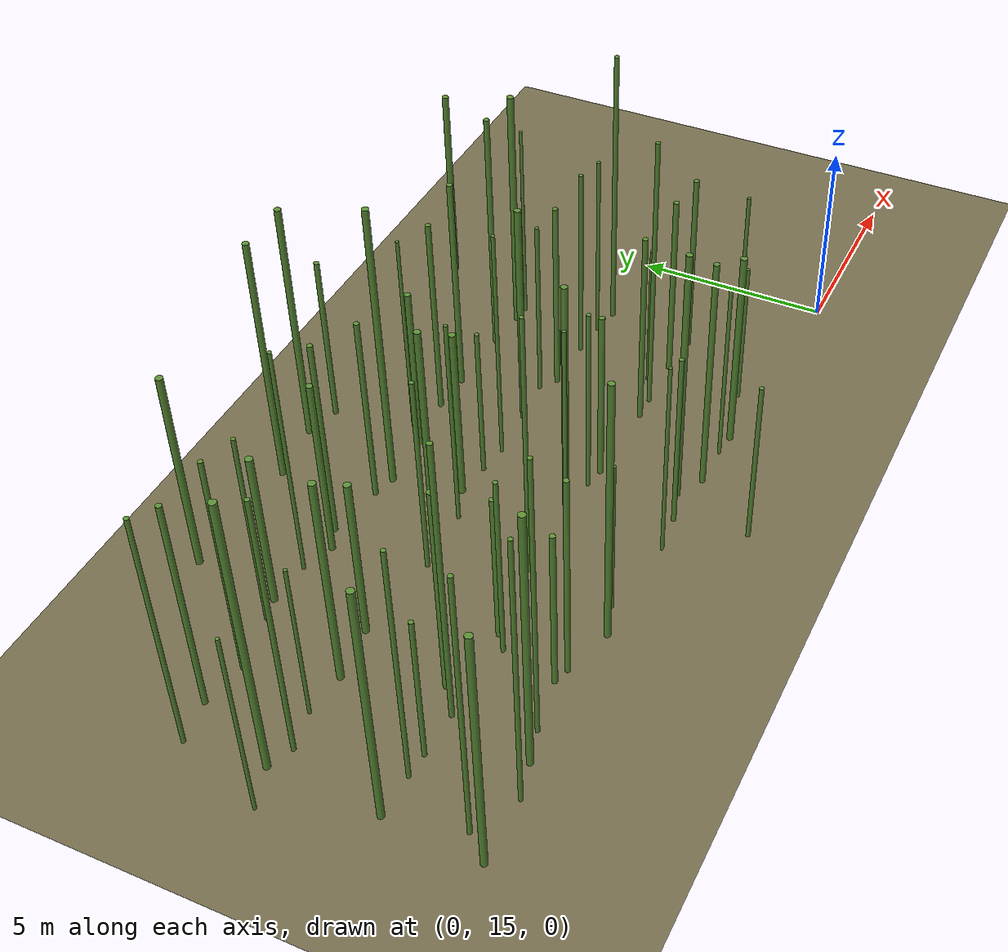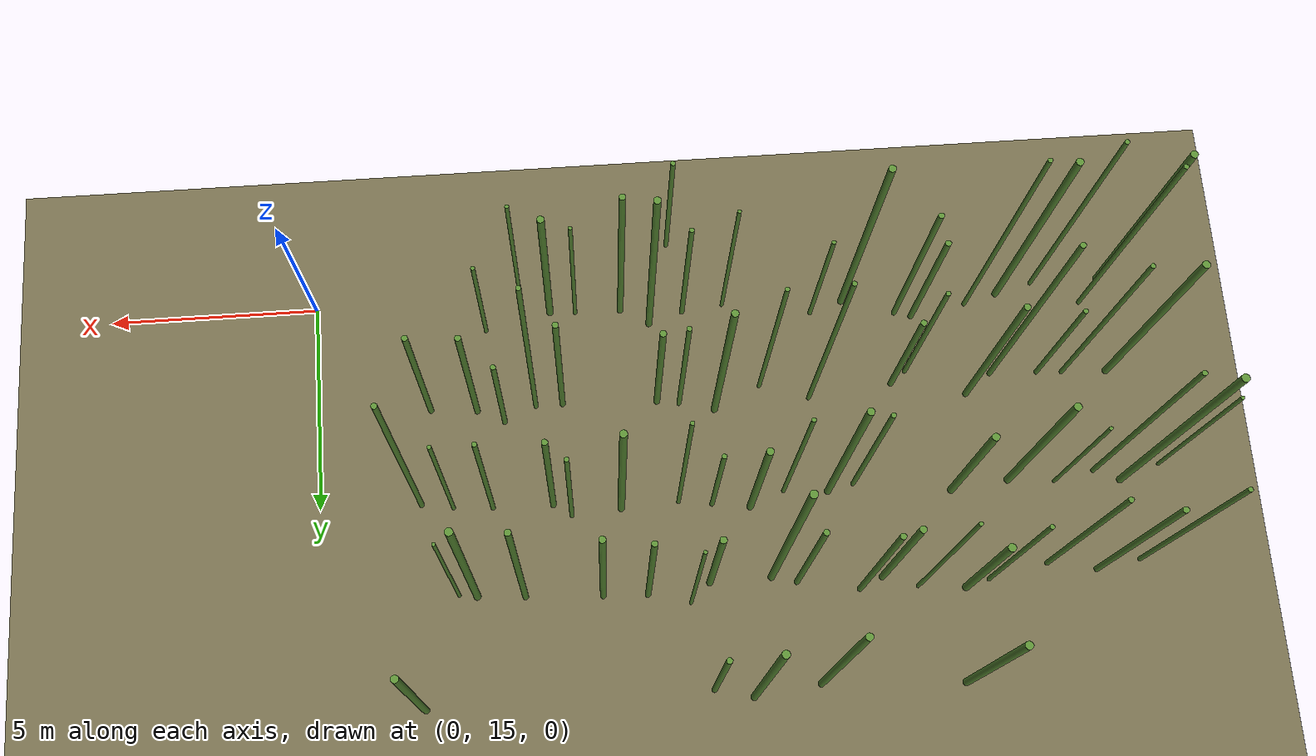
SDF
<sdf version="1.9">
 <world name="bamboo_field">
  <model name="ground_plane">
   <static>true</static>
   <link name="link">
    <collision name="collision">
     <geometry><plane><normal>0 0 1</normal><size>80.0 80.0</size></plane></geometry>
    </collision>
    <visual name="visual">
     <geometry><plane><normal>0 0 1</normal><size>80.0 80.0</size></plane></geometry>
     <material><diffuse>0.45 0.42 0.30 1</diffuse></material>
    </visual>
   </link>
  </model>
  <model name="bamboo_1370">
   <static>true</static>
   <pose>-8.637411182873626 13.799189805065652 2.2882804846056155 0 0 0</pose>
   <link name="link">
    <collision name="collision">
     <geometry>
      <cylinder><radius>0.054734864406432354</radius><length>4.576560969211231</length></cylinder>
     </geometry>
    </collision>
    <visual name="visual">
     <geometry>
      <cylinder><radius>0.054734864406432354</radius><length>4.576560969211231</length></cylinder>
     </geometry>
     <material><diffuse>0.35 0.55 0.20 1</diffuse><specular>0.1 0.1 0.1 1</specular></material>
    </visual>
   </link>
  </model>
  <model name="bamboo_1422">
   <static>true</static>
   <pose>-19.141682316494336 15.375070960467488 3.4076699135398143 0 0 0</pose>
   <link name="link">
    <collision name="collision">
     <geometry>
      <cylinder><radius>0.08102089876117535</radius><length>6.815339827079629</length></cylinder>
     </geometry>
    </collision>
    <visual name="visual">
     <geometry>
      <cylinder><radius>0.08102089876117535</radius><length>6.815339827079629</length></cylinder>
     </geometry>
     <material><diffuse>0.35 0.55 0.20 1</diffuse><specular>0.1 0.1 0.1 1</specular></material>
    </visual>
   </link>
  </model>
  <model name="bamboo_1423">
   <static>true</static>
   <pose>-18.62548258652282 15.95668628831851 3.7592143216532743 0 0 0</pose>
   <link name="link">
    <collision name="collision">
     <geometry>
      <cylinder><radius>0.054180221135768716</radius><length>7.518428643306549</length></cylinder>
     </geometry>
    </collision>
    <visual name="visual">
     <geometry>
      <cylinder><radius>0.054180221135768716</radius><length>7.518428643306549</length></cylinder>
     </geometry>
     <material><diffuse>0.35 0.55 0.20 1</diffuse><specular>0.1 0.1 0.1 1</specular></material>
    </visual>
   </link>
  </model>
  <model name="bamboo_1424">
   <static>true</static>
   <pose>-17.50238699015399 15.380618411402144 3.800374506548927 0 0 0</pose>
   <link name="link">
    <collision name="collision">
     <geometry>
      <cylinder><radius>0.052077721954940835</radius><length>7.600749013097854</length></cylinder>
     </geometry>
    </collision>
    <visual name="visual">
     <geometry>
      <cylinder><radius>0.052077721954940835</radius><length>7.600749013097854</length></cylinder>
     </geometry>
     <material><diffuse>0.35 0.55 0.20 1</diffuse><specular>0.1 0.1 0.1 1</specular></material>
    </visual>
   </link>
  </model>
  <model name="bamboo_1425">
   <static>true</static>
   <pose>-16.611264540848623 15.604310322659313 3.6400687805003735 0 0 0</pose>
   <link name="link">
    <collision name="collision">
     <geometry>
      <cylinder><radius>0.08083535057267667</radius><length>7.280137561000747</length></cylinder>
     </geometry>
    </collision>
    <visual name="visual">
     <geometry>
      <cylinder><radius>0.08083535057267667</radius><length>7.280137561000747</length></cylinder>
     </geometry>
     <material><diffuse>0.35 0.55 0.20 1</diffuse><specular>0.1 0.1 0.1 1</specular></material>
    </visual>
   </link>
  </model>
  <model name="bamboo_1426">
   <static>true</static>
   <pose>-15.812699993264918 15.82085141666468 3.9469806461239214 0 0 0</pose>
   <link name="link">
    <collision name="collision">
     <geometry>
      <cylinder><radius>0.05209155565341546</radius><length>7.893961292247843</length></cylinder>
     </geometry>
    </collision>
    <visual name="visual">
     <geometry>
      <cylinder><radius>0.05209155565341546</radius><length>7.893961292247843</length></cylinder>
     </geometry>
     <material><diffuse>0.35 0.55 0.20 1</diffuse><specular>0.1 0.1 0.1 1</specular></material>
    </visual>
   </link>
  </model>
  <model name="bamboo_1427">
   <static>true</static>
   <pose>-14.470750871890035 16.05389631021523 2.257740928819652 0 0 0</pose>
   <link name="link">
    <collision name="collision">
     <geometry>
      <cylinder><radius>0.06889268078994096</radius><length>4.515481857639304</length></cylinder>
     </geometry>
    </collision>
    <visual name="visual">
     <geometry>
      <cylinder><radius>0.06889268078994096</radius><length>4.515481857639304</length></cylinder>
     </geometry>
     <material><diffuse>0.35 0.55 0.20 1</diffuse><specular>0.1 0.1 0.1 1</specular></material>
    </visual>
   </link>
  </model>
  <model name="bamboo_1428">
   <static>true</static>
   <pose>-14.076950860724768 15.930567747976061 2.874803174003504 0 0 0</pose>
   <link name="link">
    <collision name="collision">
     <geometry>
      <cylinder><radius>0.06586385390104489</radius><length>5.749606348007008</length></cylinder>
     </geometry>
    </collision>
    <visual name="visual">
     <geometry>
      <cylinder><radius>0.06586385390104489</radius><length>5.749606348007008</length></cylinder>
     </geometry>
     <material><diffuse>0.35 0.55 0.20 1</diffuse><specular>0.1 0.1 0.1 1</specular></material>
    </visual>
   </link>
  </model>
  <model name="bamboo_1429">
   <static>true</static>
   <pose>-12.805829721705058 15.551908451923197 3.6860614532555918 0 0 0</pose>
   <link name="link">
    <collision name="collision">
     <geometry>
      <cylinder><radius>0.07921406469941591</radius><length>7.3721229065111835</length></cylinder>
     </geometry>
    </collision>
    <visual name="visual">
     <geometry>
      <cylinder><radius>0.07921406469941591</radius><length>7.3721229065111835</length></cylinder>
     </geometry>
     <material><diffuse>0.35 0.55 0.20 1</diffuse><specular>0.1 0.1 0.1 1</specular></material>
    </visual>
   </link>
  </model>
  <model name="bamboo_1430">
   <static>true</static>
   <pose>-12.017595658243396 15.809973254308215 2.18653081395686 0 0 0</pose>
   <link name="link">
    <collision name="collision">
     <geometry>
      <cylinder><radius>0.050188128833940034</radius><length>4.37306162791372</length></cylinder>
     </geometry>
    </collision>
    <visual name="visual">
     <geometry>
      <cylinder><radius>0.050188128833940034</radius><length>4.37306162791372</length></cylinder>
     </geometry>
     <material><diffuse>0.35 0.55 0.20 1</diffuse><specular>0.1 0.1 0.1 1</specular></material>
    </visual>
   </link>
  </model>
  <model name="bamboo_1431">
   <static>true</static>
   <pose>-9.883807006385647 15.461130976553129 2.764809698243288 0 0 0</pose>
   <link name="link">
    <collision name="collision">
     <geometry>
      <cylinder><radius>0.04393862522087761</radius><length>5.529619396486576</length></cylinder>
     </geometry>
    </collision>
    <visual name="visual">
     <geometry>
      <cylinder><radius>0.04393862522087761</radius><length>5.529619396486576</length></cylinder>
     </geometry>
     <material><diffuse>0.35 0.55 0.20 1</diffuse><specular>0.1 0.1 0.1 1</specular></material>
    </visual>
   </link>
  </model>
  <model name="bamboo_1432">
   <static>true</static>
   <pose>-8.89342577004781 15.577593120416049 2.479443768449466 0 0 0</pose>
   <link name="link">
    <collision name="collision">
     <geometry>
      <cylinder><radius>0.057906067589877236</radius><length>4.958887536898932</length></cylinder>
     </geometry>
    </collision>
    <visual name="visual">
     <geometry>
      <cylinder><radius>0.057906067589877236</radius><length>4.958887536898932</length></cylinder>
     </geometry>
     <material><diffuse>0.35 0.55 0.20 1</diffuse><specular>0.1 0.1 0.1 1</specular></material>
    </visual>
   </link>
  </model>
  <model name="bamboo_1433">
   <static>true</static>
   <pose>-8.068521240570973 15.831227752798918 3.572096398146554 0 0 0</pose>
   <link name="link">
    <collision name="collision">
     <geometry>
      <cylinder><radius>0.07900144763555281</radius><length>7.144192796293108</length></cylinder>
     </geometry>
    </collision>
    <visual name="visual">
     <geometry>
      <cylinder><radius>0.07900144763555281</radius><length>7.144192796293108</length></cylinder>
     </geometry>
     <material><diffuse>0.35 0.55 0.20 1</diffuse><specular>0.1 0.1 0.1 1</specular></material>
    </visual>
   </link>
  </model>
  <model name="bamboo_1434">
   <static>true</static>
   <pose>-7.392261217321982 15.44214082712415 3.276773139607874 0 0 0</pose>
   <link name="link">
    <collision name="collision">
     <geometry>
      <cylinder><radius>0.07137190044788302</radius><length>6.553546279215748</length></cylinder>
     </geometry>
    </collision>
    <visual name="visual">
     <geometry>
      <cylinder><radius>0.07137190044788302</radius><length>6.553546279215748</length></cylinder>
     </geometry>
     <material><diffuse>0.35 0.55 0.20 1</diffuse><specular>0.1 0.1 0.1 1</specular></material>
    </visual>
   </link>
  </model>
  <model name="bamboo_1435">
   <static>true</static>
   <pose>-6.287934978909858 15.434691364684397 2.564926076859156 0 0 0</pose>
   <link name="link">
    <collision name="collision">
     <geometry>
      <cylinder><radius>0.045353832670239874</radius><length>5.129852153718312</length></cylinder>
     </geometry>
    </collision>
    <visual name="visual">
     <geometry>
      <cylinder><radius>0.045353832670239874</radius><length>5.129852153718312</length></cylinder>
     </geometry>
     <material><diffuse>0.35 0.55 0.20 1</diffuse><specular>0.1 0.1 0.1 1</specular></material>
    </visual>
   </link>
  </model>
  <model name="bamboo_1436">
   <static>true</static>
   <pose>-5.672734440213366 15.385117243860766 2.78160041720676 0 0 0</pose>
   <link name="link">
    <collision name="collision">
     <geometry><cylinder><radius>0.0819157941669123</radius><length>5.56320083441352</length></cylinder></geometry>
    </collision>
    <visual name="visual">
     <geometry><cylinder><radius>0.0819157941669123</radius><length>5.56320083441352</length></cylinder></geometry>
     <material><diffuse>0.35 0.55 0.20 1</diffuse><specular>0.1 0.1 0.1 1</specular></material>
    </visual>
   </link>
  </model>
  <model name="bamboo_1437">
   <static>true</static>
   <pose>-5.024351863951925 15.589256821114411 3.37467282146077 0 0 0</pose>
   <link name="link">
    <collision name="collision">
     <geometry>
      <cylinder><radius>0.04381563425447641</radius><length>6.74934564292154</length></cylinder>
     </geometry>
    </collision>
    <visual name="visual">
     <geometry>
      <cylinder><radius>0.04381563425447641</radius><length>6.74934564292154</length></cylinder>
     </geometry>
     <material><diffuse>0.35 0.55 0.20 1</diffuse><specular>0.1 0.1 0.1 1</specular></material>
    </visual>
   </link>
  </model>
  <model name="bamboo_1438">
   <static>true</static>
   <pose>-4.098635012156323 15.766853060847831 2.020280583257052 0 0 0</pose>
   <link name="link">
    <collision name="collision">
     <geometry>
      <cylinder><radius>0.04899032179219834</radius><length>4.040561166514104</length></cylinder>
     </geometry>
    </collision>
    <visual name="visual">
     <geometry>
      <cylinder><radius>0.04899032179219834</radius><length>4.040561166514104</length></cylinder>
     </geometry>
     <material><diffuse>0.35 0.55 0.20 1</diffuse><specular>0.1 0.1 0.1 1</specular></material>
    </visual>
   </link>
  </model>
  <model name="bamboo_1489">
   <static>true</static>
   <pose>-19.02253638811498 17.75380171104035 3.357603051437682 0 0 0</pose>
   <link name="link">
    <collision name="collision">
     <geometry>
      <cylinder><radius>0.08385720179486711</radius><length>6.715206102875364</length></cylinder>
     </geometry>
    </collision>
    <visual name="visual">
     <geometry>
      <cylinder><radius>0.08385720179486711</radius><length>6.715206102875364</length></cylinder>
     </geometry>
     <material><diffuse>0.35 0.55 0.20 1</diffuse><specular>0.1 0.1 0.1 1</specular></material>
    </visual>
   </link>
  </model>
  <model name="bamboo_1490">
   <static>true</static>
   <pose>-17.94707247366397 17.71303152620509 3.358132725191788 0 0 0</pose>
   <link name="link">
    <collision name="collision">
     <geometry>
      <cylinder><radius>0.0532654666566578</radius><length>6.716265450383576</length></cylinder>
     </geometry>
    </collision>
    <visual name="visual">
     <geometry>
      <cylinder><radius>0.0532654666566578</radius><length>6.716265450383576</length></cylinder>
     </geometry>
     <material><diffuse>0.35 0.55 0.20 1</diffuse><specular>0.1 0.1 0.1 1</specular></material>
    </visual>
   </link>
  </model>
  <model name="bamboo_1491">
   <static>true</static>
   <pose>-17.337696778244997 17.679605278455735 2.082199954681349 0 0 0</pose>
   <link name="link">
    <collision name="collision">
     <geometry>
      <cylinder><radius>0.05546616486853833</radius><length>4.164399909362698</length></cylinder>
     </geometry>
    </collision>
    <visual name="visual">
     <geometry>
      <cylinder><radius>0.05546616486853833</radius><length>4.164399909362698</length></cylinder>
     </geometry>
     <material><diffuse>0.35 0.55 0.20 1</diffuse><specular>0.1 0.1 0.1 1</specular></material>
    </visual>
   </link>
  </model>
  <model name="bamboo_1492">
   <static>true</static>
   <pose>-16.20216586089257 17.641199141773203 3.9363060711700553 0 0 0</pose>
   <link name="link">
    <collision name="collision">
     <geometry>
      <cylinder><radius>0.06275138369450808</radius><length>7.8726121423401105</length></cylinder>
     </geometry>
    </collision>
    <visual name="visual">
     <geometry>
      <cylinder><radius>0.06275138369450808</radius><length>7.8726121423401105</length></cylinder>
     </geometry>
     <material><diffuse>0.35 0.55 0.20 1</diffuse><specular>0.1 0.1 0.1 1</specular></material>
    </visual>
   </link>
  </model>
  <model name="bamboo_1493">
   <static>true</static>
   <pose>-15.563856837164604 18.11598319657194 2.932634944929526 0 0 0</pose>
   <link name="link">
    <collision name="collision">
     <geometry>
      <cylinder><radius>0.07427633499619778</radius><length>5.865269889859052</length></cylinder>
     </geometry>
    </collision>
    <visual name="visual">
     <geometry>
      <cylinder><radius>0.07427633499619778</radius><length>5.865269889859052</length></cylinder>
     </geometry>
     <material><diffuse>0.35 0.55 0.20 1</diffuse><specular>0.1 0.1 0.1 1</specular></material>
    </visual>
   </link>
  </model>
  <model name="bamboo_1494">
   <static>true</static>
   <pose>-14.159648664580022 17.450227848030007 2.5765199074837044 0 0 0</pose>
   <link name="link">
    <collision name="collision">
     <geometry>
      <cylinder><radius>0.055182279976764614</radius><length>5.153039814967409</length></cylinder>
     </geometry>
    </collision>
    <visual name="visual">
     <geometry>
      <cylinder><radius>0.055182279976764614</radius><length>5.153039814967409</length></cylinder>
     </geometry>
     <material><diffuse>0.35 0.55 0.20 1</diffuse><specular>0.1 0.1 0.1 1</specular></material>
    </visual>
   </link>
  </model>
  <model name="bamboo_1495">
   <static>true</static>
   <pose>-13.789041921898574 17.740539148254655 2.1063865644986395 0 0 0</pose>
   <link name="link">
    <collision name="collision">
     <geometry>
      <cylinder><radius>0.06965358090528688</radius><length>4.212773128997279</length></cylinder>
     </geometry>
    </collision>
    <visual name="visual">
     <geometry>
      <cylinder><radius>0.06965358090528688</radius><length>4.212773128997279</length></cylinder>
     </geometry>
     <material><diffuse>0.35 0.55 0.20 1</diffuse><specular>0.1 0.1 0.1 1</specular></material>
    </visual>
   </link>
  </model>
  <model name="bamboo_1496">
   <static>true</static>
   <pose>-11.772714062019025 17.97753293305442 3.7180210873781627 0 0 0</pose>
   <link name="link">
    <collision name="collision">
     <geometry>
      <cylinder><radius>0.054163276845687364</radius><length>7.4360421747563255</length></cylinder>
     </geometry>
    </collision>
    <visual name="visual">
     <geometry>
      <cylinder><radius>0.054163276845687364</radius><length>7.4360421747563255</length></cylinder>
     </geometry>
     <material><diffuse>0.35 0.55 0.20 1</diffuse><specular>0.1 0.1 0.1 1</specular></material>
    </visual>
   </link>
  </model>
  <model name="bamboo_1497">
   <static>true</static>
   <pose>-10.611657340278613 17.59251360408747 3.1704496729114626 0 0 0</pose>
   <link name="link">
    <collision name="collision">
     <geometry>
      <cylinder><radius>0.04983637065889343</radius><length>6.340899345822925</length></cylinder>
     </geometry>
    </collision>
    <visual name="visual">
     <geometry>
      <cylinder><radius>0.04983637065889343</radius><length>6.340899345822925</length></cylinder>
     </geometry>
     <material><diffuse>0.35 0.55 0.20 1</diffuse><specular>0.1 0.1 0.1 1</specular></material>
    </visual>
   </link>
  </model>
  <model name="bamboo_1498">
   <static>true</static>
   <pose>-9.483094488663422 18.116147938818706 3.274089297447217 0 0 0</pose>
   <link name="link">
    <collision name="collision">
     <geometry>
      <cylinder><radius>0.08058545443359771</radius><length>6.548178594894434</length></cylinder>
     </geometry>
    </collision>
    <visual name="visual">
     <geometry>
      <cylinder><radius>0.08058545443359771</radius><length>6.548178594894434</length></cylinder>
     </geometry>
     <material><diffuse>0.35 0.55 0.20 1</diffuse><specular>0.1 0.1 0.1 1</specular></material>
    </visual>
   </link>
  </model>
  <model name="bamboo_1499">
   <static>true</static>
   <pose>-8.644897983184615 17.914559416028624 2.621471601326793 0 0 0</pose>
   <link name="link">
    <collision name="collision">
     <geometry>
      <cylinder><radius>0.055101132764309196</radius><length>5.242943202653586</length></cylinder>
     </geometry>
    </collision>
    <visual name="visual">
     <geometry>
      <cylinder><radius>0.055101132764309196</radius><length>5.242943202653586</length></cylinder>
     </geometry>
     <material><diffuse>0.35 0.55 0.20 1</diffuse><specular>0.1 0.1 0.1 1</specular></material>
    </visual>
   </link>
  </model>
  <model name="bamboo_1500">
   <static>true</static>
   <pose>-8.115657824178948 17.82731180687906 2.399013329297609 0 0 0</pose>
   <link name="link">
    <collision name="collision">
     <geometry>
      <cylinder><radius>0.07416605918394786</radius><length>4.798026658595218</length></cylinder>
     </geometry>
    </collision>
    <visual name="visual">
     <geometry>
      <cylinder><radius>0.07416605918394786</radius><length>4.798026658595218</length></cylinder>
     </geometry>
     <material><diffuse>0.35 0.55 0.20 1</diffuse><specular>0.1 0.1 0.1 1</specular></material>
    </visual>
   </link>
  </model>
  <model name="bamboo_1501">
   <static>true</static>
   <pose>-5.850405372691138 17.74513813923631 2.7519318876028915 0 0 0</pose>
   <link name="link">
    <collision name="collision">
     <geometry><cylinder><radius>0.067291533791785</radius><length>5.503863775205783</length></cylinder></geometry>
    </collision>
    <visual name="visual">
     <geometry><cylinder><radius>0.067291533791785</radius><length>5.503863775205783</length></cylinder></geometry>
     <material><diffuse>0.35 0.55 0.20 1</diffuse><specular>0.1 0.1 0.1 1</specular></material>
    </visual>
   </link>
  </model>
  <model name="bamboo_1502">
   <static>true</static>
   <pose>-5.209287504288365 17.767178380304212 3.8697596294457206 0 0 0</pose>
   <link name="link">
    <collision name="collision">
     <geometry>
      <cylinder><radius>0.055663023108175086</radius><length>7.739519258891441</length></cylinder>
     </geometry>
    </collision>
    <visual name="visual">
     <geometry>
      <cylinder><radius>0.055663023108175086</radius><length>7.739519258891441</length></cylinder>
     </geometry>
     <material><diffuse>0.35 0.55 0.20 1</diffuse><specular>0.1 0.1 0.1 1</specular></material>
    </visual>
   </link>
  </model>
  <model name="bamboo_1503">
   <static>true</static>
   <pose>-4.445802417170624 18.10955739590492 2.0553458767020447 0 0 0</pose>
   <link name="link">
    <collision name="collision">
     <geometry>
      <cylinder><radius>0.06051293122071176</radius><length>4.110691753404089</length></cylinder>
     </geometry>
    </collision>
    <visual name="visual">
     <geometry>
      <cylinder><radius>0.06051293122071176</radius><length>4.110691753404089</length></cylinder>
     </geometry>
     <material><diffuse>0.35 0.55 0.20 1</diffuse><specular>0.1 0.1 0.1 1</specular></material>
    </visual>
   </link>
  </model>
  <model name="bamboo_1504">
   <static>true</static>
   <pose>-3.7988193820897305 17.797857925209357 2.6047799704467067 0 0 0</pose>
   <link name="link">
    <collision name="collision">
     <geometry>
      <cylinder><radius>0.07076042752968101</radius><length>5.2095599408934135</length></cylinder>
     </geometry>
    </collision>
    <visual name="visual">
     <geometry>
      <cylinder><radius>0.07076042752968101</radius><length>5.2095599408934135</length></cylinder>
     </geometry>
     <material><diffuse>0.35 0.55 0.20 1</diffuse><specular>0.1 0.1 0.1 1</specular></material>
    </visual>
   </link>
  </model>
  <model name="bamboo_1505">
   <static>true</static>
   <pose>-2.6890267753060324 17.714174693937384 2.5866863735547065 0 0 0</pose>
   <link name="link">
    <collision name="collision">
     <geometry>
      <cylinder><radius>0.0682787300191094</radius><length>5.173372747109413</length></cylinder>
     </geometry>
    </collision>
    <visual name="visual">
     <geometry>
      <cylinder><radius>0.0682787300191094</radius><length>5.173372747109413</length></cylinder>
     </geometry>
     <material><diffuse>0.35 0.55 0.20 1</diffuse><specular>0.1 0.1 0.1 1</specular></material>
    </visual>
   </link>
  </model>
  <model name="bamboo_1558">
   <static>true</static>
   <pose>-19.919729908258354 20.154201546333557 2.610296145548017 0 0 0</pose>
   <link name="link">
    <collision name="collision">
     <geometry>
      <cylinder><radius>0.04261298256382438</radius><length>5.220592291096034</length></cylinder>
     </geometry>
    </collision>
    <visual name="visual">
     <geometry>
      <cylinder><radius>0.04261298256382438</radius><length>5.220592291096034</length></cylinder>
     </geometry>
     <material><diffuse>0.35 0.55 0.20 1</diffuse><specular>0.1 0.1 0.1 1</specular></material>
    </visual>
   </link>
  </model>
  <model name="bamboo_1559">
   <static>true</static>
   <pose>-18.953202776211405 20.477908950107118 3.8453973655128113 0 0 0</pose>
   <link name="link">
    <collision name="collision">
     <geometry>
      <cylinder><radius>0.08465846804388548</radius><length>7.690794731025623</length></cylinder>
     </geometry>
    </collision>
    <visual name="visual">
     <geometry>
      <cylinder><radius>0.08465846804388548</radius><length>7.690794731025623</length></cylinder>
     </geometry>
     <material><diffuse>0.35 0.55 0.20 1</diffuse><specular>0.1 0.1 0.1 1</specular></material>
    </visual>
   </link>
  </model>
  <model name="bamboo_1560">
   <static>true</static>
   <pose>-18.348180826287887 20.210022801866746 3.658478910051741 0 0 0</pose>
   <link name="link">
    <collision name="collision">
     <geometry>
      <cylinder><radius>0.05704721924878145</radius><length>7.316957820103482</length></cylinder>
     </geometry>
    </collision>
    <visual name="visual">
     <geometry>
      <cylinder><radius>0.05704721924878145</radius><length>7.316957820103482</length></cylinder>
     </geometry>
     <material><diffuse>0.35 0.55 0.20 1</diffuse><specular>0.1 0.1 0.1 1</specular></material>
    </visual>
   </link>
  </model>
  <model name="bamboo_1561">
   <static>true</static>
   <pose>-17.388666185776774 20.41564628705122 2.2184204094602786 0 0 0</pose>
   <link name="link">
    <collision name="collision">
     <geometry>
      <cylinder><radius>0.04285592966057237</radius><length>4.436840818920557</length></cylinder>
     </geometry>
    </collision>
    <visual name="visual">
     <geometry>
      <cylinder><radius>0.04285592966057237</radius><length>4.436840818920557</length></cylinder>
     </geometry>
     <material><diffuse>0.35 0.55 0.20 1</diffuse><specular>0.1 0.1 0.1 1</specular></material>
    </visual>
   </link>
  </model>
  <model name="bamboo_1562">
   <static>true</static>
   <pose>-16.288333982629293 20.308550507465217 2.9270050737833233 0 0 0</pose>
   <link name="link">
    <collision name="collision">
     <geometry>
      <cylinder><radius>0.08689880368663422</radius><length>5.854010147566647</length></cylinder>
     </geometry>
    </collision>
    <visual name="visual">
     <geometry>
      <cylinder><radius>0.08689880368663422</radius><length>5.854010147566647</length></cylinder>
     </geometry>
     <material><diffuse>0.35 0.55 0.20 1</diffuse><specular>0.1 0.1 0.1 1</specular></material>
    </visual>
   </link>
  </model>
  <model name="bamboo_1563">
   <static>true</static>
   <pose>-14.918445821625633 20.470450616067193 2.263745425756463 0 0 0</pose>
   <link name="link">
    <collision name="collision">
     <geometry>
      <cylinder><radius>0.08623305694692839</radius><length>4.527490851512926</length></cylinder>
     </geometry>
    </collision>
    <visual name="visual">
     <geometry>
      <cylinder><radius>0.08623305694692839</radius><length>4.527490851512926</length></cylinder>
     </geometry>
     <material><diffuse>0.35 0.55 0.20 1</diffuse><specular>0.1 0.1 0.1 1</specular></material>
    </visual>
   </link>
  </model>
  <model name="bamboo_1564">
   <static>true</static>
   <pose>-12.617831197797463 20.163924776278755 2.789202407577726 0 0 0</pose>
   <link name="link">
    <collision name="collision">
     <geometry>
      <cylinder><radius>0.056876617659286643</radius><length>5.578404815155452</length></cylinder>
     </geometry>
    </collision>
    <visual name="visual">
     <geometry>
      <cylinder><radius>0.056876617659286643</radius><length>5.578404815155452</length></cylinder>
     </geometry>
     <material><diffuse>0.35 0.55 0.20 1</diffuse><specular>0.1 0.1 0.1 1</specular></material>
    </visual>
   </link>
  </model>
  <model name="bamboo_1565">
   <static>true</static>
   <pose>-11.998007805890225 20.308647122304613 3.2159983517578112 0 0 0</pose>
   <link name="link">
    <collision name="collision">
     <geometry>
      <cylinder><radius>0.08051297484769074</radius><length>6.4319967035156225</length></cylinder>
     </geometry>
    </collision>
    <visual name="visual">
     <geometry>
      <cylinder><radius>0.08051297484769074</radius><length>6.4319967035156225</length></cylinder>
     </geometry>
     <material><diffuse>0.35 0.55 0.20 1</diffuse><specular>0.1 0.1 0.1 1</specular></material>
    </visual>
   </link>
  </model>
  <model name="bamboo_1566">
   <static>true</static>
   <pose>-10.948690042697402 20.237246019935775 2.9254485371301575 0 0 0</pose>
   <link name="link">
    <collision name="collision">
     <geometry>
      <cylinder><radius>0.04893921980403687</radius><length>5.850897074260315</length></cylinder>
     </geometry>
    </collision>
    <visual name="visual">
     <geometry>
      <cylinder><radius>0.04893921980403687</radius><length>5.850897074260315</length></cylinder>
     </geometry>
     <material><diffuse>0.35 0.55 0.20 1</diffuse><specular>0.1 0.1 0.1 1</specular></material>
    </visual>
   </link>
  </model>
  <model name="bamboo_1567">
   <static>true</static>
   <pose>-10.129262955964276 20.567922350038607 2.4356849999518824 0 0 0</pose>
   <link name="link">
    <collision name="collision">
     <geometry>
      <cylinder><radius>0.08221626652650849</radius><length>4.871369999903765</length></cylinder>
     </geometry>
    </collision>
    <visual name="visual">
     <geometry>
      <cylinder><radius>0.08221626652650849</radius><length>4.871369999903765</length></cylinder>
     </geometry>
     <material><diffuse>0.35 0.55 0.20 1</diffuse><specular>0.1 0.1 0.1 1</specular></material>
    </visual>
   </link>
  </model>
  <model name="bamboo_1568">
   <static>true</static>
   <pose>-9.233831335830434 20.446922150236627 2.1280869758194614 0 0 0</pose>
   <link name="link">
    <collision name="collision">
     <geometry>
      <cylinder><radius>0.055701326710467514</radius><length>4.256173951638923</length></cylinder>
     </geometry>
    </collision>
    <visual name="visual">
     <geometry>
      <cylinder><radius>0.055701326710467514</radius><length>4.256173951638923</length></cylinder>
     </geometry>
     <material><diffuse>0.35 0.55 0.20 1</diffuse><specular>0.1 0.1 0.1 1</specular></material>
    </visual>
   </link>
  </model>
  <model name="bamboo_1569">
   <static>true</static>
   <pose>-8.446405085901073 20.343302882508222 3.2606763567700283 0 0 0</pose>
   <link name="link">
    <collision name="collision">
     <geometry>
      <cylinder><radius>0.046361124004207145</radius><length>6.521352713540057</length></cylinder>
     </geometry>
    </collision>
    <visual name="visual">
     <geometry>
      <cylinder><radius>0.046361124004207145</radius><length>6.521352713540057</length></cylinder>
     </geometry>
     <material><diffuse>0.35 0.55 0.20 1</diffuse><specular>0.1 0.1 0.1 1</specular></material>
    </visual>
   </link>
  </model>
  <model name="bamboo_1570">
   <static>true</static>
   <pose>-7.0846348438635305 20.412888757187773 3.159781430919981 0 0 0</pose>
   <link name="link">
    <collision name="collision">
     <geometry>
      <cylinder><radius>0.08302851387869897</radius><length>6.319562861839962</length></cylinder>
     </geometry>
    </collision>
    <visual name="visual">
     <geometry>
      <cylinder><radius>0.08302851387869897</radius><length>6.319562861839962</length></cylinder>
     </geometry>
     <material><diffuse>0.35 0.55 0.20 1</diffuse><specular>0.1 0.1 0.1 1</specular></material>
    </visual>
   </link>
  </model>
  <model name="bamboo_1571">
   <static>true</static>
   <pose>-5.914807133885101 20.51098158464957 2.514890149475905 0 0 0</pose>
   <link name="link">
    <collision name="collision">
     <geometry>
      <cylinder><radius>0.052952737500996265</radius><length>5.02978029895181</length></cylinder>
     </geometry>
    </collision>
    <visual name="visual">
     <geometry>
      <cylinder><radius>0.052952737500996265</radius><length>5.02978029895181</length></cylinder>
     </geometry>
     <material><diffuse>0.35 0.55 0.20 1</diffuse><specular>0.1 0.1 0.1 1</specular></material>
    </visual>
   </link>
  </model>
  <model name="bamboo_1572">
   <static>true</static>
   <pose>-5.494109190916036 20.22140724827459 2.6994593010718146 0 0 0</pose>
   <link name="link">
    <collision name="collision">
     <geometry>
      <cylinder><radius>0.07002894194226594</radius><length>5.398918602143629</length></cylinder>
     </geometry>
    </collision>
    <visual name="visual">
     <geometry>
      <cylinder><radius>0.07002894194226594</radius><length>5.398918602143629</length></cylinder>
     </geometry>
     <material><diffuse>0.35 0.55 0.20 1</diffuse><specular>0.1 0.1 0.1 1</specular></material>
    </visual>
   </link>
  </model>
  <model name="bamboo_1573">
   <static>true</static>
   <pose>-4.068045323609066 20.201917138672584 2.7427187238505164 0 0 0</pose>
   <link name="link">
    <collision name="collision">
     <geometry>
      <cylinder><radius>0.05628945230333726</radius><length>5.485437447701033</length></cylinder>
     </geometry>
    </collision>
    <visual name="visual">
     <geometry>
      <cylinder><radius>0.05628945230333726</radius><length>5.485437447701033</length></cylinder>
     </geometry>
     <material><diffuse>0.35 0.55 0.20 1</diffuse><specular>0.1 0.1 0.1 1</specular></material>
    </visual>
   </link>
  </model>
  <model name="bamboo_1574">
   <static>true</static>
   <pose>-3.135460449678854 20.14522841892756 2.653081083401542 0 0 0</pose>
   <link name="link">
    <collision name="collision">
     <geometry>
      <cylinder><radius>0.04715397411014683</radius><length>5.306162166803084</length></cylinder>
     </geometry>
    </collision>
    <visual name="visual">
     <geometry>
      <cylinder><radius>0.04715397411014683</radius><length>5.306162166803084</length></cylinder>
     </geometry>
     <material><diffuse>0.35 0.55 0.20 1</diffuse><specular>0.1 0.1 0.1 1</specular></material>
    </visual>
   </link>
  </model>
  <model name="bamboo_1575">
   <static>true</static>
   <pose>-2.38857909412077 20.022957342898334 3.9470024003693913 0 0 0</pose>
   <link name="link">
    <collision name="collision">
     <geometry>
      <cylinder><radius>0.06353425172808749</radius><length>7.894004800738783</length></cylinder>
     </geometry>
    </collision>
    <visual name="visual">
     <geometry>
      <cylinder><radius>0.06353425172808749</radius><length>7.894004800738783</length></cylinder>
     </geometry>
     <material><diffuse>0.35 0.55 0.20 1</diffuse><specular>0.1 0.1 0.1 1</specular></material>
    </visual>
   </link>
  </model>
  <model name="bamboo_1630">
   <static>true</static>
   <pose>-19.124954985670918 22.41168127312876 3.3121014174252923 0 0 0</pose>
   <link name="link">
    <collision name="collision">
     <geometry>
      <cylinder><radius>0.05321349776136219</radius><length>6.624202834850585</length></cylinder>
     </geometry>
    </collision>
    <visual name="visual">
     <geometry>
      <cylinder><radius>0.05321349776136219</radius><length>6.624202834850585</length></cylinder>
     </geometry>
     <material><diffuse>0.35 0.55 0.20 1</diffuse><specular>0.1 0.1 0.1 1</specular></material>
    </visual>
   </link>
  </model>
  <model name="bamboo_1631">
   <static>true</static>
   <pose>-18.082344244880325 22.581056947957208 2.966699038213834 0 0 0</pose>
   <link name="link">
    <collision name="collision">
     <geometry>
      <cylinder><radius>0.06804981294220608</radius><length>5.933398076427668</length></cylinder>
     </geometry>
    </collision>
    <visual name="visual">
     <geometry>
      <cylinder><radius>0.06804981294220608</radius><length>5.933398076427668</length></cylinder>
     </geometry>
     <material><diffuse>0.35 0.55 0.20 1</diffuse><specular>0.1 0.1 0.1 1</specular></material>
    </visual>
   </link>
  </model>
  <model name="bamboo_1632">
   <static>true</static>
   <pose>-16.945237696864847 22.36465681749084 3.0931628303912095 0 0 0</pose>
   <link name="link">
    <collision name="collision">
     <geometry>
      <cylinder><radius>0.058636883334331355</radius><length>6.186325660782419</length></cylinder>
     </geometry>
    </collision>
    <visual name="visual">
     <geometry>
      <cylinder><radius>0.058636883334331355</radius><length>6.186325660782419</length></cylinder>
     </geometry>
     <material><diffuse>0.35 0.55 0.20 1</diffuse><specular>0.1 0.1 0.1 1</specular></material>
    </visual>
   </link>
  </model>
  <model name="bamboo_1633">
   <static>true</static>
   <pose>-15.53676717820407 22.657787210913316 2.739643253040408 0 0 0</pose>
   <link name="link">
    <collision name="collision">
     <geometry>
      <cylinder><radius>0.05160577738549012</radius><length>5.479286506080816</length></cylinder>
     </geometry>
    </collision>
    <visual name="visual">
     <geometry>
      <cylinder><radius>0.05160577738549012</radius><length>5.479286506080816</length></cylinder>
     </geometry>
     <material><diffuse>0.35 0.55 0.20 1</diffuse><specular>0.1 0.1 0.1 1</specular></material>
    </visual>
   </link>
  </model>
  <model name="bamboo_1634">
   <static>true</static>
   <pose>-14.979521276778723 22.81319361551315 2.190778070105395 0 0 0</pose>
   <link name="link">
    <collision name="collision">
     <geometry>
      <cylinder><radius>0.08879087138311362</radius><length>4.38155614021079</length></cylinder>
     </geometry>
    </collision>
    <visual name="visual">
     <geometry>
      <cylinder><radius>0.08879087138311362</radius><length>4.38155614021079</length></cylinder>
     </geometry>
     <material><diffuse>0.35 0.55 0.20 1</diffuse><specular>0.1 0.1 0.1 1</specular></material>
    </visual>
   </link>
  </model>
  <model name="bamboo_1635">
   <static>true</static>
   <pose>-13.870615430463321 22.713936905015785 3.2329769408415316 0 0 0</pose>
   <link name="link">
    <collision name="collision">
     <geometry>
      <cylinder><radius>0.047066528276799274</radius><length>6.465953881683063</length></cylinder>
     </geometry>
    </collision>
    <visual name="visual">
     <geometry>
      <cylinder><radius>0.047066528276799274</radius><length>6.465953881683063</length></cylinder>
     </geometry>
     <material><diffuse>0.35 0.55 0.20 1</diffuse><specular>0.1 0.1 0.1 1</specular></material>
    </visual>
   </link>
  </model>
  <model name="bamboo_1636">
   <static>true</static>
   <pose>-13.057401538508552 22.444322151860906 2.5040476979592228 0 0 0</pose>
   <link name="link">
    <collision name="collision">
     <geometry>
      <cylinder><radius>0.07837042394780283</radius><length>5.0080953959184455</length></cylinder>
     </geometry>
    </collision>
    <visual name="visual">
     <geometry>
      <cylinder><radius>0.07837042394780283</radius><length>5.0080953959184455</length></cylinder>
     </geometry>
     <material><diffuse>0.35 0.55 0.20 1</diffuse><specular>0.1 0.1 0.1 1</specular></material>
    </visual>
   </link>
  </model>
  <model name="bamboo_1637">
   <static>true</static>
   <pose>-12.511274979996493 22.691092352459375 2.8130685667906388 0 0 0</pose>
   <link name="link">
    <collision name="collision">
     <geometry>
      <cylinder><radius>0.06826561801088232</radius><length>5.6261371335812775</length></cylinder>
     </geometry>
    </collision>
    <visual name="visual">
     <geometry>
      <cylinder><radius>0.06826561801088232</radius><length>5.6261371335812775</length></cylinder>
     </geometry>
     <material><diffuse>0.35 0.55 0.20 1</diffuse><specular>0.1 0.1 0.1 1</specular></material>
    </visual>
   </link>
  </model>
  <model name="bamboo_1638">
   <static>true</static>
   <pose>-11.056754009396546 22.433100785775302 2.6260323518436444 0 0 0</pose>
   <link name="link">
    <collision name="collision">
     <geometry>
      <cylinder><radius>0.06727943677448311</radius><length>5.252064703687289</length></cylinder>
     </geometry>
    </collision>
    <visual name="visual">
     <geometry>
      <cylinder><radius>0.06727943677448311</radius><length>5.252064703687289</length></cylinder>
     </geometry>
     <material><diffuse>0.35 0.55 0.20 1</diffuse><specular>0.1 0.1 0.1 1</specular></material>
    </visual>
   </link>
  </model>
  <model name="bamboo_1639">
   <static>true</static>
   <pose>-10.472608761661146 22.281344928866677 3.985510717825134 0 0 0</pose>
   <link name="link">
    <collision name="collision">
     <geometry>
      <cylinder><radius>0.08293264550703949</radius><length>7.971021435650268</length></cylinder>
     </geometry>
    </collision>
    <visual name="visual">
     <geometry>
      <cylinder><radius>0.08293264550703949</radius><length>7.971021435650268</length></cylinder>
     </geometry>
     <material><diffuse>0.35 0.55 0.20 1</diffuse><specular>0.1 0.1 0.1 1</specular></material>
    </visual>
   </link>
  </model>
  <model name="bamboo_1640">
   <static>true</static>
   <pose>-9.026206418513341 22.324152096934412 2.3241862285128088 0 0 0</pose>
   <link name="link">
    <collision name="collision">
     <geometry>
      <cylinder><radius>0.0778443352928849</radius><length>4.6483724570256175</length></cylinder>
     </geometry>
    </collision>
    <visual name="visual">
     <geometry>
      <cylinder><radius>0.0778443352928849</radius><length>4.6483724570256175</length></cylinder>
     </geometry>
     <material><diffuse>0.35 0.55 0.20 1</diffuse><specular>0.1 0.1 0.1 1</specular></material>
    </visual>
   </link>
  </model>
  <model name="bamboo_1641">
   <static>true</static>
   <pose>-8.555364587535687 22.770021756783336 2.8483644499657235 0 0 0</pose>
   <link name="link">
    <collision name="collision">
     <geometry>
      <cylinder><radius>0.04195309739019827</radius><length>5.696728899931447</length></cylinder>
     </geometry>
    </collision>
    <visual name="visual">
     <geometry>
      <cylinder><radius>0.04195309739019827</radius><length>5.696728899931447</length></cylinder>
     </geometry>
     <material><diffuse>0.35 0.55 0.20 1</diffuse><specular>0.1 0.1 0.1 1</specular></material>
    </visual>
   </link>
  </model>
  <model name="bamboo_1642">
   <static>true</static>
   <pose>-7.572266981383845 22.512649797170134 2.798811316628136 0 0 0</pose>
   <link name="link">
    <collision name="collision">
     <geometry>
      <cylinder><radius>0.06735425249418145</radius><length>5.597622633256272</length></cylinder>
     </geometry>
    </collision>
    <visual name="visual">
     <geometry>
      <cylinder><radius>0.06735425249418145</radius><length>5.597622633256272</length></cylinder>
     </geometry>
     <material><diffuse>0.35 0.55 0.20 1</diffuse><specular>0.1 0.1 0.1 1</specular></material>
    </visual>
   </link>
  </model>
  <model name="bamboo_1643">
   <static>true</static>
   <pose>-6.531732893902118 22.467956484358627 3.0449602055905185 0 0 0</pose>
   <link name="link">
    <collision name="collision">
     <geometry>
      <cylinder><radius>0.0738341579851164</radius><length>6.089920411181037</length></cylinder>
     </geometry>
    </collision>
    <visual name="visual">
     <geometry>
      <cylinder><radius>0.0738341579851164</radius><length>6.089920411181037</length></cylinder>
     </geometry>
     <material><diffuse>0.35 0.55 0.20 1</diffuse><specular>0.1 0.1 0.1 1</specular></material>
    </visual>
   </link>
  </model>
  <model name="bamboo_1644">
   <static>true</static>
   <pose>-4.7293486034984795 22.383681769440265 3.428949600029786 0 0 0</pose>
   <link name="link">
    <collision name="collision">
     <geometry>
      <cylinder><radius>0.07069999104440039</radius><length>6.857899200059572</length></cylinder>
     </geometry>
    </collision>
    <visual name="visual">
     <geometry>
      <cylinder><radius>0.07069999104440039</radius><length>6.857899200059572</length></cylinder>
     </geometry>
     <material><diffuse>0.35 0.55 0.20 1</diffuse><specular>0.1 0.1 0.1 1</specular></material>
    </visual>
   </link>
  </model>
  <model name="bamboo_1645">
   <static>true</static>
   <pose>-3.6110850637478027 22.30255168790953 3.440260514560141 0 0 0</pose>
   <link name="link">
    <collision name="collision">
     <geometry>
      <cylinder><radius>0.08635397968693234</radius><length>6.880521029120282</length></cylinder>
     </geometry>
    </collision>
    <visual name="visual">
     <geometry>
      <cylinder><radius>0.08635397968693234</radius><length>6.880521029120282</length></cylinder>
     </geometry>
     <material><diffuse>0.35 0.55 0.20 1</diffuse><specular>0.1 0.1 0.1 1</specular></material>
    </visual>
   </link>
  </model>
  <model name="bamboo_1646">
   <static>true</static>
   <pose>-3.1927666508039567 22.25474782462517 2.8326058861497905 0 0 0</pose>
   <link name="link">
    <collision name="collision">
     <geometry>
      <cylinder><radius>0.04049105931732357</radius><length>5.665211772299581</length></cylinder>
     </geometry>
    </collision>
    <visual name="visual">
     <geometry>
      <cylinder><radius>0.04049105931732357</radius><length>5.665211772299581</length></cylinder>
     </geometry>
     <material><diffuse>0.35 0.55 0.20 1</diffuse><specular>0.1 0.1 0.1 1</specular></material>
    </visual>
   </link>
  </model>
  <model name="bamboo_1702">
   <static>true</static>
   <pose>-14.712089711380228 25.004909774464522 2.8034067812928116 0 0 0</pose>
   <link name="link">
    <collision name="collision">
     <geometry>
      <cylinder><radius>0.08799605260424126</radius><length>5.606813562585623</length></cylinder>
     </geometry>
    </collision>
    <visual name="visual">
     <geometry>
      <cylinder><radius>0.08799605260424126</radius><length>5.606813562585623</length></cylinder>
     </geometry>
     <material><diffuse>0.35 0.55 0.20 1</diffuse><specular>0.1 0.1 0.1 1</specular></material>
    </visual>
   </link>
  </model>
  <model name="bamboo_1706">
   <static>true</static>
   <pose>-11.391924527576206 24.826822134118288 3.455257533076483 0 0 0</pose>
   <link name="link">
    <collision name="collision">
     <geometry>
      <cylinder><radius>0.08064175546710198</radius><length>6.910515066152966</length></cylinder>
     </geometry>
    </collision>
    <visual name="visual">
     <geometry>
      <cylinder><radius>0.08064175546710198</radius><length>6.910515066152966</length></cylinder>
     </geometry>
     <material><diffuse>0.35 0.55 0.20 1</diffuse><specular>0.1 0.1 0.1 1</specular></material>
    </visual>
   </link>
  </model>
  <model name="bamboo_1707">
   <static>true</static>
   <pose>-9.825254170932945 25.029064836715392 3.3727752770378654 0 0 0</pose>
   <link name="link">
    <collision name="collision">
     <geometry>
      <cylinder><radius>0.08445829674576529</radius><length>6.745550554075731</length></cylinder>
     </geometry>
    </collision>
    <visual name="visual">
     <geometry>
      <cylinder><radius>0.08445829674576529</radius><length>6.745550554075731</length></cylinder>
     </geometry>
     <material><diffuse>0.35 0.55 0.20 1</diffuse><specular>0.1 0.1 0.1 1</specular></material>
    </visual>
   </link>
  </model>
  <model name="bamboo_1708">
   <static>true</static>
   <pose>-8.933605399314013 24.8051049104994 2.3574563606566143 0 0 0</pose>
   <link name="link">
    <collision name="collision">
     <geometry>
      <cylinder><radius>0.06713742489637267</radius><length>4.714912721313229</length></cylinder>
     </geometry>
    </collision>
    <visual name="visual">
     <geometry>
      <cylinder><radius>0.06713742489637267</radius><length>4.714912721313229</length></cylinder>
     </geometry>
     <material><diffuse>0.35 0.55 0.20 1</diffuse><specular>0.1 0.1 0.1 1</specular></material>
    </visual>
   </link>
  </model>
  <model name="bamboo_1712">
   <static>true</static>
   <pose>-2.3312857979613697 24.847977021430243 2.7638259904478826 0 0 0</pose>
   <link name="link">
    <collision name="collision">
     <geometry>
      <cylinder><radius>0.08410184439313512</radius><length>5.527651980895765</length></cylinder>
     </geometry>
    </collision>
    <visual name="visual">
     <geometry>
      <cylinder><radius>0.08410184439313512</radius><length>5.527651980895765</length></cylinder>
     </geometry>
     <material><diffuse>0.35 0.55 0.20 1</diffuse><specular>0.1 0.1 0.1 1</specular></material>
    </visual>
   </link>
  </model>
 </world>
</sdf>
